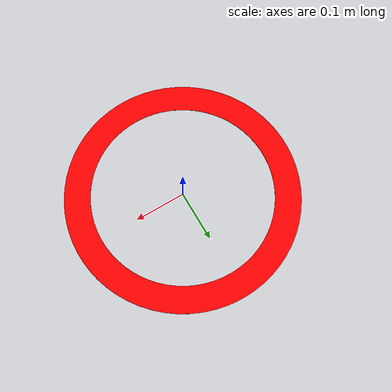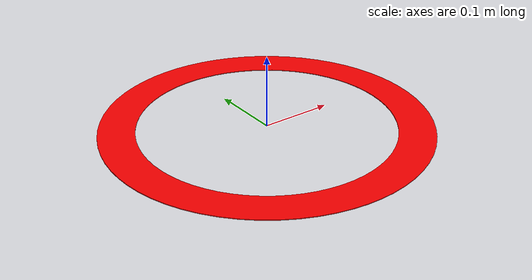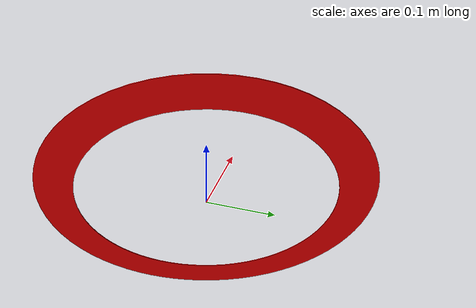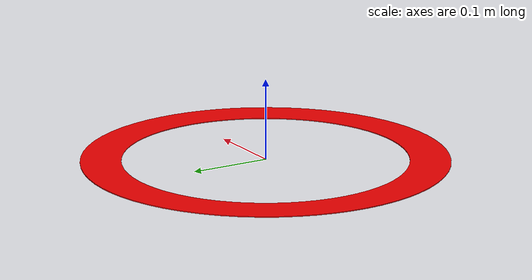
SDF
<?xml version="1.0" ?>
<sdf version="1.6">
    <model name="Donut">
        <static>true</static>
        <link name="link">
            <collision name="donut_collision">
                <pose>0 0 0 0 0 0</pose>
                <geometry>
                    <cylinder>
                        <radius>0.01</radius>
                        <length>0.01</length>
                    </cylinder>
                </geometry>
            </collision>
            <visual name="donut_visual">
                <geometry>
                    <mesh>
                        <uri>model://Donut/meshes/Donut.dae</uri>
                    <scale>5 5 1</scale>
                    </mesh>
                </geometry>
                    <material>
                        <ambient>1 0 0 1</ambient>
                        <diffuse>1 0 0 1</diffuse>
                        <specular>0.1 0.1 0.1 1</specular>
                    </material>
            </visual>
        </link>
    </model>
</sdf>
